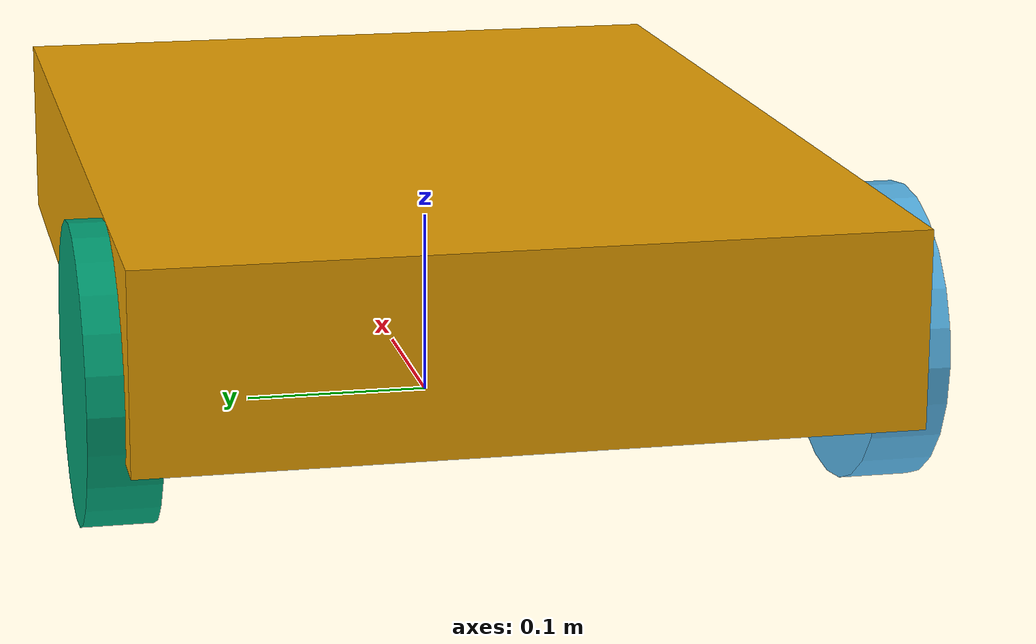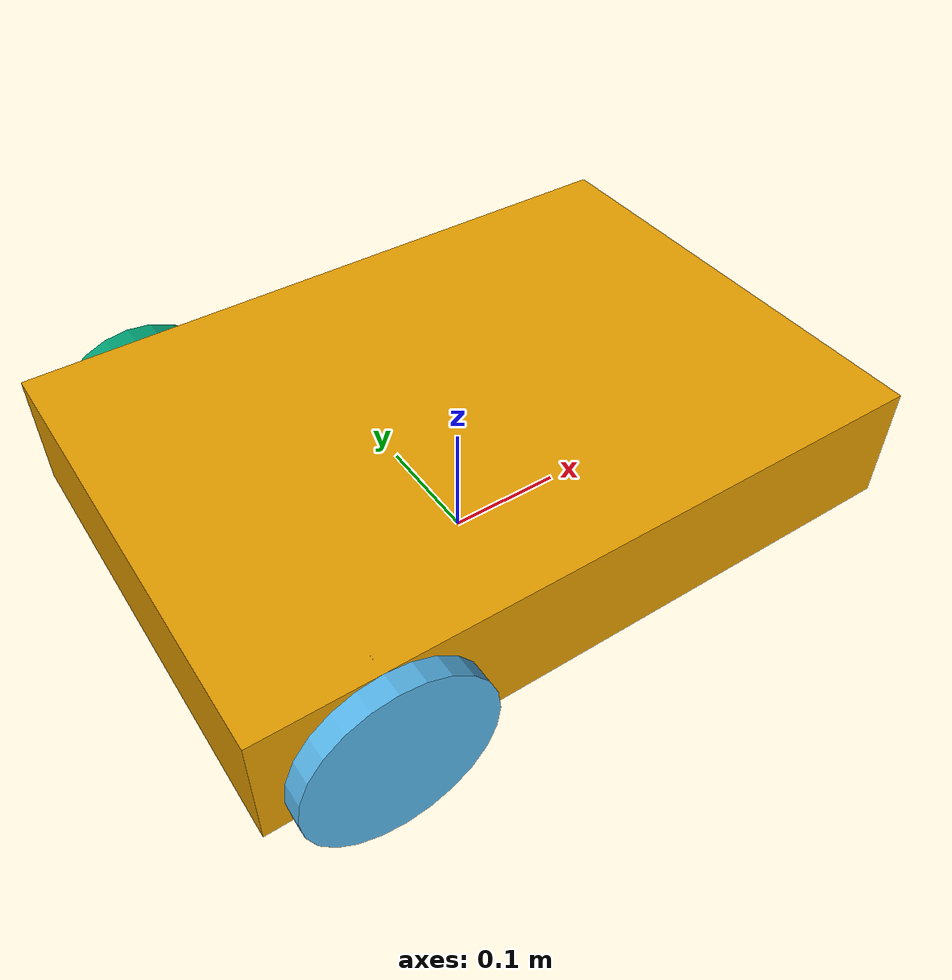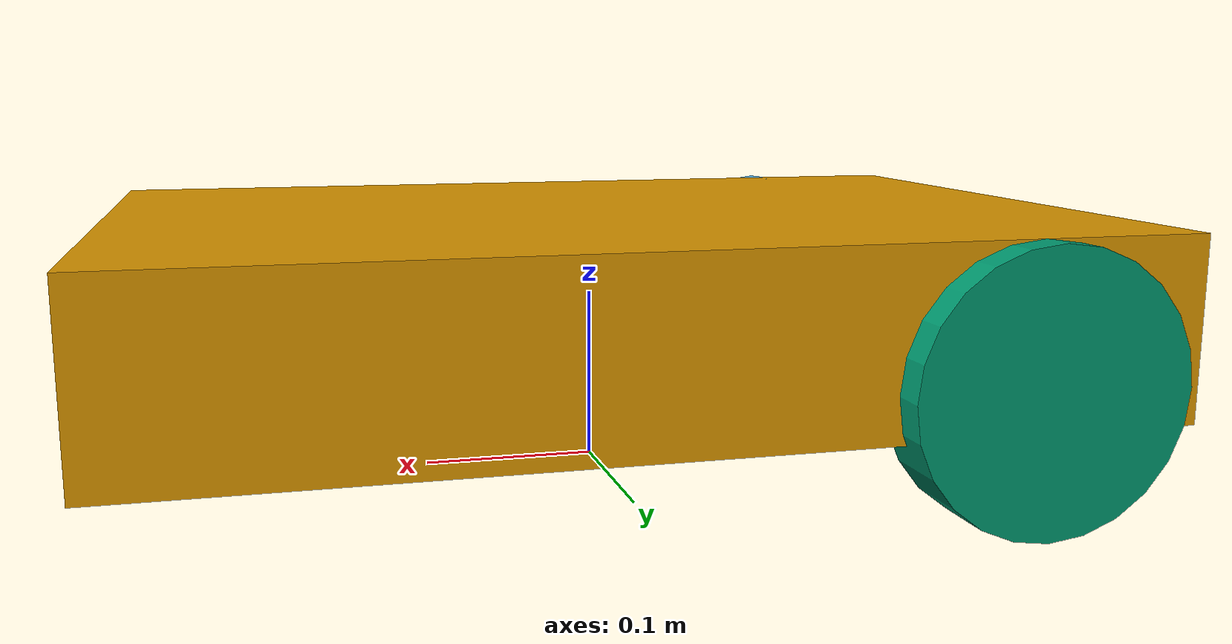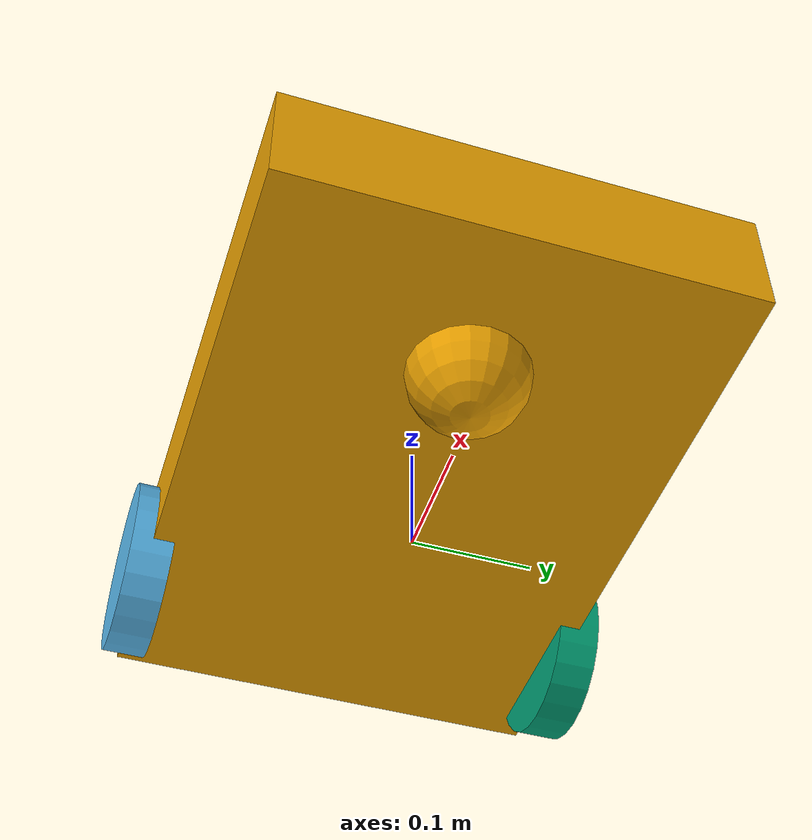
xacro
<?xml version='1.0'?>

<robot name="myrobot" xmlns:xacro="http://www.ros.org/wiki/xacro">

  <xacro:property name="cameraSize" value="0.05"/>
  <xacro:property name="cameraMass" value="0.1"/>

  <xacro:include filename="$(find navigation)/urdf/mybot.gazebo" />
  <xacro:include filename="$(find navigation)/urdf/materials.xacro" />
  <xacro:include filename="$(find navigation)/urdf/macros.xacro" />

  <link name='chassis'>
    <pose>0 0 0.1 0 0 0</pose>

    <inertial>
      <mass value="15.0"/>
      <origin xyz="0.0 0 0.1" rpy=" 0 0 0"/>
      <inertia
          ixx="0.1" ixy="0" ixz="0"
          iyy="0.1" iyz="0"
          izz="0.1"
      />
    </inertial>

    <collision name='collision'>
      <geometry>
        <box size=".55 .386 .1"/>
      </geometry>
    </collision>

    <visual name='chassis_visual'>
      <origin xyz="0 0 0.1" rpy=" 0 0 0"/>
      <geometry>
        <box size=".55 .386 .1"/>
      </geometry>
    </visual>

    <collision name='caster_collision'>
      <origin xyz="0.14 0 0.05" rpy=" 0 0 0"/>
      <geometry>
        <sphere radius="0.05"/>
      </geometry>
      <surface>
        <friction>
          <ode>
            <mu>0</mu>
            <mu2>0</mu2>
            <slip1>1.0</slip1>
            <slip2>1.0</slip2>
          </ode>
        </friction>
      </surface>
    </collision>

    <visual name='caster_visual'>
      <origin xyz="0.14 0 0.05" rpy=" 0 0 0"/>
      <geometry>
        <sphere radius="0.05"/>
      </geometry>
    </visual>

    <collision name='caster_front_collision'>
      <origin xyz="0.14 0 0.05" rpy=" 0 0 0"/>
      <geometry>
        <sphere radius="0.05"/>
      </geometry>
      <surface>
        <friction>
          <ode>
            <mu>0</mu>
            <mu2>0</mu2>
            <slip1>1.0</slip1>
            <slip2>1.0</slip2>
          </ode>
        </friction>
      </surface>
    </collision>

    <visual name='caster_front_visual'>
      <origin xyz="0.14 0 0.05" rpy=" 0 0 0"/>
      <geometry>
        <sphere radius="0.05"/>
      </geometry>
    </visual>

  </link>

  <link name="left_wheel">
    <!--origin xyz="0.1 0.13 0.1" rpy="0 1.5707 1.5707"/-->
    <collision name="collision">
      <origin xyz="0 0 0" rpy="0 1.5707 1.5707"/>
      <geometry>
        <cylinder radius="0.075" length="0.036"/>
      </geometry>
    </collision>
    <visual name="left_wheel_visual">
      <origin xyz="0 0 0" rpy="0 1.5707 1.5707"/>
      <geometry>
        <cylinder radius="0.075" length="0.036"/>
      </geometry>
    </visual>
    <inertial>
      <origin xyz="0 0 0.1" rpy="0 1.5707 1.5707"/>
      <mass value="5"/>
      <inertia
        ixx=".1" ixy="0.0" ixz="0.0"
        iyy=".1" iyz="0.0"
        izz=".1"/>
    </inertial>
  </link>

  <link name="right_wheel">
    <!--origin xyz="0.1 -0.13 0.1" rpy="0 1.5707 1.5707"/-->
    <collision name="collision">
      <!--origin xyz="-0.182 0.211 0.075" rpy="0 1.5707 1.5707"/-->
      <origin xyz="0 0 0" rpy="0 1.5707 1.5707"/>
      <geometry>
        <cylinder radius="0.075" length="0.036"/>
      </geometry>
    </collision>
    <visual name="right_wheel_visual">
      <origin xyz="0 0 0" rpy="0 1.5707 1.5707"/>
      <geometry>
        <cylinder radius="0.075" length="0.036"/>
      </geometry>
    </visual>
    <inertial>
      <origin xyz="0 0 0.1" rpy="0 1.5707 1.5707"/>
      <mass value="5"/>
      <inertia
        ixx=".1" ixy="0.0" ixz="0.0"
        iyy=".1" iyz="0.0"
        izz=".1"/>
    </inertial>
  </link>

  <joint type="continuous" name="left_wheel_hinge">
    <origin xyz="-0.182 -0.193 0.075" rpy="0 0 0"/>
    <!--origin xyz="0.1 0.13 0" rpy="0 1.5707 1.5707"/-->
    <child link="left_wheel"/>
    <parent link="chassis"/>
    <axis xyz="0 1 0" rpy="0 0 0"/>
    <limit effort="10000" velocity="1000"/>
    <joint_properties damping="1.0" friction="1.0"/>
  </joint>

  <joint type="continuous" name="right_wheel_hinge">
    <origin xyz="-0.182 0.193 0.075" rpy="0 0 0"/>
    <!--origin xyz="0.1 -0.13 0" rpy="0 1.5707 1.5707"/-->
    <child link="right_wheel"/>
    <parent link="chassis"/>
    <axis xyz="0 1 0" rpy="0 0 0"/>
    <limit effort="10000" velocity="1000"/>
    <joint_properties damping="1.0" friction="1.0"/>
  </joint>

</robot>
